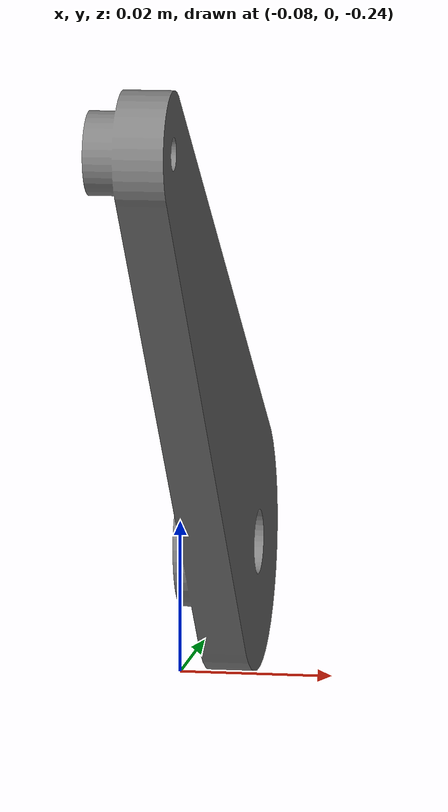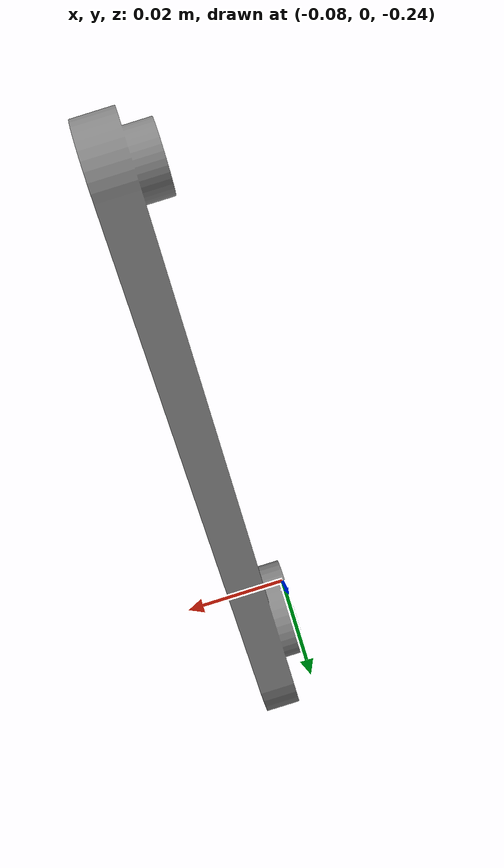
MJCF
<?xml version="1.0" encoding="UTF-8"?>
<mujoco>
<compiler meshdir="assets"/>
  <asset>
    <mesh file="2026_fei_ka_lun_tui____right_behind_calf_1__lun_tui_da_tui__1.stl"/>
  </asset>

  <default>
  <default class="right_behind_calf_default">
  <geom contype="0" conaffinity="0"/>
  </default>
  </default>

  <worldbody>
  <body name="right_behind_calf_body" pos="0 0 0">
    <geom type="mesh" mesh="2026_fei_ka_lun_tui____right_behind_calf_1__lun_tui_da_tui__1" mass="0.0124" class="right_behind_calf_default"/>
  </body>
  </worldbody>
</mujoco>
